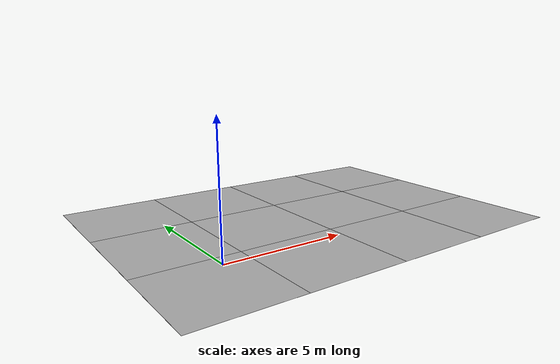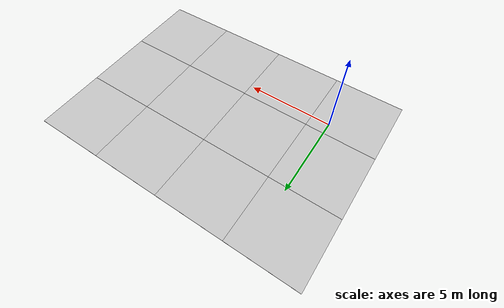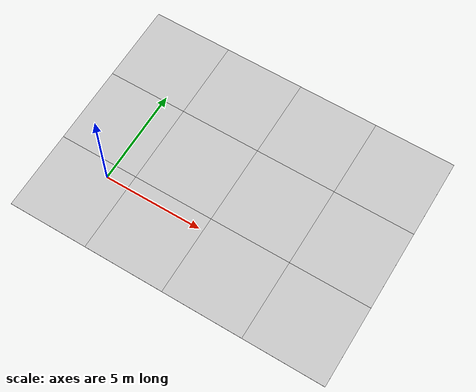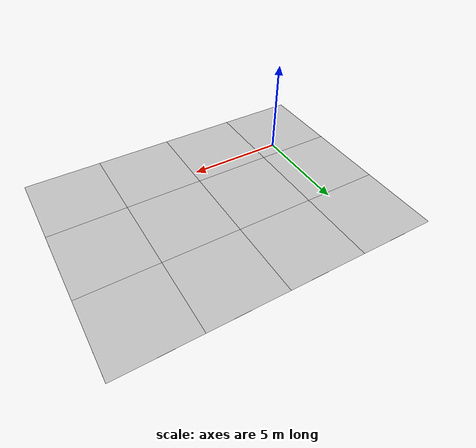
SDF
<sdf version='1.6'><world name='default'>
    <light name='sun_light' type='directional'>
      <pose frame=''>0 0 10 0 -0 0</pose>
      <diffuse>0.5 0.5 0.5 1</diffuse>
      <specular>0.1 0.1 0.1 1</specular>
      <direction>0.1 0.1 -0.9</direction>
      <attenuation>
        <range>20</range>
        <constant>0.5</constant>
        <linear>0.01</linear>
        <quadratic>0.001</quadratic>
      </attenuation>
      <cast_shadows>1</cast_shadows>
    </light>

    <model name='Tile/0-0'>
      <static>1</static>
      <link name='link'>
        <collision name='collision'>
          <geometry>
            <plane>
              <normal>0 0 1</normal>
              <size>4.096 4.096</size>
            </plane>
          </geometry>
          <surface>
            <friction>
              <ode>
                <mu>100</mu>
                <mu2>50</mu2>
              </ode>
              <torsional>
                <ode/>
              </torsional>
            </friction>
            <contact>
              <ode/>
            </contact>
            <bounce/>
          </surface>
          <max_contacts>10</max_contacts>
        </collision>
        <visual name='visual'>
          <cast_shadows>0</cast_shadows>
          <geometry>
            <plane>
              <normal>0 0 1</normal>
              <size>4.096 4.096</size>
            </plane>
          </geometry>
          <material>
            <script>
              <uri>file://materials/scripts</uri>
              <uri>file://materials/textures</uri>
              <name>Tile/2d6d550247164405bd7f7721bde8c66eb1b70c9c122a16d1426408409930bc02</name>
            </script>
          </material>
        </visual>
        <self_collide>0</self_collide>
        <enable_wind>0</enable_wind>
        <kinematic>0</kinematic>
      </link>
      <pose frame=''>-0.952 -1.3519999999999999 0 0 -0 0</pose>
    </model>

    <model name='Tile/0-1'>
      <static>1</static>
      <link name='link'>
        <collision name='collision'>
          <geometry>
            <plane>
              <normal>0 0 1</normal>
              <size>4.096 4.096</size>
            </plane>
          </geometry>
          <surface>
            <friction>
              <ode>
                <mu>100</mu>
                <mu2>50</mu2>
              </ode>
              <torsional>
                <ode/>
              </torsional>
            </friction>
            <contact>
              <ode/>
            </contact>
            <bounce/>
          </surface>
          <max_contacts>10</max_contacts>
        </collision>
        <visual name='visual'>
          <cast_shadows>0</cast_shadows>
          <geometry>
            <plane>
              <normal>0 0 1</normal>
              <size>4.096 4.096</size>
            </plane>
          </geometry>
          <material>
            <script>
              <uri>file://materials/scripts</uri>
              <uri>file://materials/textures</uri>
              <name>Tile/5eab350b8220ac9944dbdfa4ac3288c7c17e24c3bf5df0dfcf6173d64dae00a1</name>
            </script>
          </material>
        </visual>
        <self_collide>0</self_collide>
        <enable_wind>0</enable_wind>
        <kinematic>0</kinematic>
      </link>
      <pose frame=''>-0.952 2.744 0 0 -0 0</pose>
    </model>

    <model name='Tile/0-2'>
      <static>1</static>
      <link name='link'>
        <collision name='collision'>
          <geometry>
            <plane>
              <normal>0 0 1</normal>
              <size>4.096 4.096</size>
            </plane>
          </geometry>
          <surface>
            <friction>
              <ode>
                <mu>100</mu>
                <mu2>50</mu2>
              </ode>
              <torsional>
                <ode/>
              </torsional>
            </friction>
            <contact>
              <ode/>
            </contact>
            <bounce/>
          </surface>
          <max_contacts>10</max_contacts>
        </collision>
        <visual name='visual'>
          <cast_shadows>0</cast_shadows>
          <geometry>
            <plane>
              <normal>0 0 1</normal>
              <size>4.096 4.096</size>
            </plane>
          </geometry>
          <material>
            <script>
              <uri>file://materials/scripts</uri>
              <uri>file://materials/textures</uri>
              <name>Tile/5eab350b8220ac9944dbdfa4ac3288c7c17e24c3bf5df0dfcf6173d64dae00a1</name>
            </script>
          </material>
        </visual>
        <self_collide>0</self_collide>
        <enable_wind>0</enable_wind>
        <kinematic>0</kinematic>
      </link>
      <pose frame=''>-0.952 6.84 0 0 -0 0</pose>
    </model>

    <model name='Tile/1-0'>
      <static>1</static>
      <link name='link'>
        <collision name='collision'>
          <geometry>
            <plane>
              <normal>0 0 1</normal>
              <size>4.096 4.096</size>
            </plane>
          </geometry>
          <surface>
            <friction>
              <ode>
                <mu>100</mu>
                <mu2>50</mu2>
              </ode>
              <torsional>
                <ode/>
              </torsional>
            </friction>
            <contact>
              <ode/>
            </contact>
            <bounce/>
          </surface>
          <max_contacts>10</max_contacts>
        </collision>
        <visual name='visual'>
          <cast_shadows>0</cast_shadows>
          <geometry>
            <plane>
              <normal>0 0 1</normal>
              <size>4.096 4.096</size>
            </plane>
          </geometry>
          <material>
            <script>
              <uri>file://materials/scripts</uri>
              <uri>file://materials/textures</uri>
              <name>Tile/ae5cc26feb82b0066c12f65bf03c7ebf14f680dca05fb5ed5e37624fc9694613</name>
            </script>
          </material>
        </visual>
        <self_collide>0</self_collide>
        <enable_wind>0</enable_wind>
        <kinematic>0</kinematic>
      </link>
      <pose frame=''>3.144 -1.3519999999999999 0 0 -0 0</pose>
    </model>

    <model name='Tile/1-1'>
      <static>1</static>
      <link name='link'>
        <collision name='collision'>
          <geometry>
            <plane>
              <normal>0 0 1</normal>
              <size>4.096 4.096</size>
            </plane>
          </geometry>
          <surface>
            <friction>
              <ode>
                <mu>100</mu>
                <mu2>50</mu2>
              </ode>
              <torsional>
                <ode/>
              </torsional>
            </friction>
            <contact>
              <ode/>
            </contact>
            <bounce/>
          </surface>
          <max_contacts>10</max_contacts>
        </collision>
        <visual name='visual'>
          <cast_shadows>0</cast_shadows>
          <geometry>
            <plane>
              <normal>0 0 1</normal>
              <size>4.096 4.096</size>
            </plane>
          </geometry>
          <material>
            <script>
              <uri>file://materials/scripts</uri>
              <uri>file://materials/textures</uri>
              <name>Tile/d91aa5f807a0e35112f9db78e1d03eb31b01904bf4083e85f3c827103604ab1e</name>
            </script>
          </material>
        </visual>
        <self_collide>0</self_collide>
        <enable_wind>0</enable_wind>
        <kinematic>0</kinematic>
      </link>
      <pose frame=''>3.144 2.744 0 0 -0 0</pose>
    </model>

    <model name='Tile/1-2'>
      <static>1</static>
      <link name='link'>
        <collision name='collision'>
          <geometry>
            <plane>
              <normal>0 0 1</normal>
              <size>4.096 4.096</size>
            </plane>
          </geometry>
          <surface>
            <friction>
              <ode>
                <mu>100</mu>
                <mu2>50</mu2>
              </ode>
              <torsional>
                <ode/>
              </torsional>
            </friction>
            <contact>
              <ode/>
            </contact>
            <bounce/>
          </surface>
          <max_contacts>10</max_contacts>
        </collision>
        <visual name='visual'>
          <cast_shadows>0</cast_shadows>
          <geometry>
            <plane>
              <normal>0 0 1</normal>
              <size>4.096 4.096</size>
            </plane>
          </geometry>
          <material>
            <script>
              <uri>file://materials/scripts</uri>
              <uri>file://materials/textures</uri>
              <name>Tile/5eab350b8220ac9944dbdfa4ac3288c7c17e24c3bf5df0dfcf6173d64dae00a1</name>
            </script>
          </material>
        </visual>
        <self_collide>0</self_collide>
        <enable_wind>0</enable_wind>
        <kinematic>0</kinematic>
      </link>
      <pose frame=''>3.144 6.84 0 0 -0 0</pose>
    </model>

    <model name='Tile/2-0'>
      <static>1</static>
      <link name='link'>
        <collision name='collision'>
          <geometry>
            <plane>
              <normal>0 0 1</normal>
              <size>4.096 4.096</size>
            </plane>
          </geometry>
          <surface>
            <friction>
              <ode>
                <mu>100</mu>
                <mu2>50</mu2>
              </ode>
              <torsional>
                <ode/>
              </torsional>
            </friction>
            <contact>
              <ode/>
            </contact>
            <bounce/>
          </surface>
          <max_contacts>10</max_contacts>
        </collision>
        <visual name='visual'>
          <cast_shadows>0</cast_shadows>
          <geometry>
            <plane>
              <normal>0 0 1</normal>
              <size>4.096 4.096</size>
            </plane>
          </geometry>
          <material>
            <script>
              <uri>file://materials/scripts</uri>
              <uri>file://materials/textures</uri>
              <name>Tile/5eab350b8220ac9944dbdfa4ac3288c7c17e24c3bf5df0dfcf6173d64dae00a1</name>
            </script>
          </material>
        </visual>
        <self_collide>0</self_collide>
        <enable_wind>0</enable_wind>
        <kinematic>0</kinematic>
      </link>
      <pose frame=''>7.24 -1.3519999999999999 0 0 -0 0</pose>
    </model>

    <model name='Tile/2-1'>
      <static>1</static>
      <link name='link'>
        <collision name='collision'>
          <geometry>
            <plane>
              <normal>0 0 1</normal>
              <size>4.096 4.096</size>
            </plane>
          </geometry>
          <surface>
            <friction>
              <ode>
                <mu>100</mu>
                <mu2>50</mu2>
              </ode>
              <torsional>
                <ode/>
              </torsional>
            </friction>
            <contact>
              <ode/>
            </contact>
            <bounce/>
          </surface>
          <max_contacts>10</max_contacts>
        </collision>
        <visual name='visual'>
          <cast_shadows>0</cast_shadows>
          <geometry>
            <plane>
              <normal>0 0 1</normal>
              <size>4.096 4.096</size>
            </plane>
          </geometry>
          <material>
            <script>
              <uri>file://materials/scripts</uri>
              <uri>file://materials/textures</uri>
              <name>Tile/5663ee2c5a15691364d5c5550976f2d8050c6cde76bd70befc22093acc96bd87</name>
            </script>
          </material>
        </visual>
        <self_collide>0</self_collide>
        <enable_wind>0</enable_wind>
        <kinematic>0</kinematic>
      </link>
      <pose frame=''>7.24 2.744 0 0 -0 0</pose>
    </model>

    <model name='Tile/2-2'>
      <static>1</static>
      <link name='link'>
        <collision name='collision'>
          <geometry>
            <plane>
              <normal>0 0 1</normal>
              <size>4.096 4.096</size>
            </plane>
          </geometry>
          <surface>
            <friction>
              <ode>
                <mu>100</mu>
                <mu2>50</mu2>
              </ode>
              <torsional>
                <ode/>
              </torsional>
            </friction>
            <contact>
              <ode/>
            </contact>
            <bounce/>
          </surface>
          <max_contacts>10</max_contacts>
        </collision>
        <visual name='visual'>
          <cast_shadows>0</cast_shadows>
          <geometry>
            <plane>
              <normal>0 0 1</normal>
              <size>4.096 4.096</size>
            </plane>
          </geometry>
          <material>
            <script>
              <uri>file://materials/scripts</uri>
              <uri>file://materials/textures</uri>
              <name>Tile/5eab350b8220ac9944dbdfa4ac3288c7c17e24c3bf5df0dfcf6173d64dae00a1</name>
            </script>
          </material>
        </visual>
        <self_collide>0</self_collide>
        <enable_wind>0</enable_wind>
        <kinematic>0</kinematic>
      </link>
      <pose frame=''>7.24 6.84 0 0 -0 0</pose>
    </model>

    <model name='Tile/3-0'>
      <static>1</static>
      <link name='link'>
        <collision name='collision'>
          <geometry>
            <plane>
              <normal>0 0 1</normal>
              <size>4.096 4.096</size>
            </plane>
          </geometry>
          <surface>
            <friction>
              <ode>
                <mu>100</mu>
                <mu2>50</mu2>
              </ode>
              <torsional>
                <ode/>
              </torsional>
            </friction>
            <contact>
              <ode/>
            </contact>
            <bounce/>
          </surface>
          <max_contacts>10</max_contacts>
        </collision>
        <visual name='visual'>
          <cast_shadows>0</cast_shadows>
          <geometry>
            <plane>
              <normal>0 0 1</normal>
              <size>4.096 4.096</size>
            </plane>
          </geometry>
          <material>
            <script>
              <uri>file://materials/scripts</uri>
              <uri>file://materials/textures</uri>
              <name>Tile/5eab350b8220ac9944dbdfa4ac3288c7c17e24c3bf5df0dfcf6173d64dae00a1</name>
            </script>
          </material>
        </visual>
        <self_collide>0</self_collide>
        <enable_wind>0</enable_wind>
        <kinematic>0</kinematic>
      </link>
      <pose frame=''>11.336 -1.3519999999999999 0 0 -0 0</pose>
    </model>

    <model name='Tile/3-1'>
      <static>1</static>
      <link name='link'>
        <collision name='collision'>
          <geometry>
            <plane>
              <normal>0 0 1</normal>
              <size>4.096 4.096</size>
            </plane>
          </geometry>
          <surface>
            <friction>
              <ode>
                <mu>100</mu>
                <mu2>50</mu2>
              </ode>
              <torsional>
                <ode/>
              </torsional>
            </friction>
            <contact>
              <ode/>
            </contact>
            <bounce/>
          </surface>
          <max_contacts>10</max_contacts>
        </collision>
        <visual name='visual'>
          <cast_shadows>0</cast_shadows>
          <geometry>
            <plane>
              <normal>0 0 1</normal>
              <size>4.096 4.096</size>
            </plane>
          </geometry>
          <material>
            <script>
              <uri>file://materials/scripts</uri>
              <uri>file://materials/textures</uri>
              <name>Tile/5eab350b8220ac9944dbdfa4ac3288c7c17e24c3bf5df0dfcf6173d64dae00a1</name>
            </script>
          </material>
        </visual>
        <self_collide>0</self_collide>
        <enable_wind>0</enable_wind>
        <kinematic>0</kinematic>
      </link>
      <pose frame=''>11.336 2.744 0 0 -0 0</pose>
    </model>

    <model name='Tile/3-2'>
      <static>1</static>
      <link name='link'>
        <collision name='collision'>
          <geometry>
            <plane>
              <normal>0 0 1</normal>
              <size>4.096 4.096</size>
            </plane>
          </geometry>
          <surface>
            <friction>
              <ode>
                <mu>100</mu>
                <mu2>50</mu2>
              </ode>
              <torsional>
                <ode/>
              </torsional>
            </friction>
            <contact>
              <ode/>
            </contact>
            <bounce/>
          </surface>
          <max_contacts>10</max_contacts>
        </collision>
        <visual name='visual'>
          <cast_shadows>0</cast_shadows>
          <geometry>
            <plane>
              <normal>0 0 1</normal>
              <size>4.096 4.096</size>
            </plane>
          </geometry>
          <material>
            <script>
              <uri>file://materials/scripts</uri>
              <uri>file://materials/textures</uri>
              <name>Tile/5eab350b8220ac9944dbdfa4ac3288c7c17e24c3bf5df0dfcf6173d64dae00a1</name>
            </script>
          </material>
        </visual>
        <self_collide>0</self_collide>
        <enable_wind>0</enable_wind>
        <kinematic>0</kinematic>
      </link>
      <pose frame=''>11.336 6.84 0 0 -0 0</pose>
    </model>
    </world></sdf>
